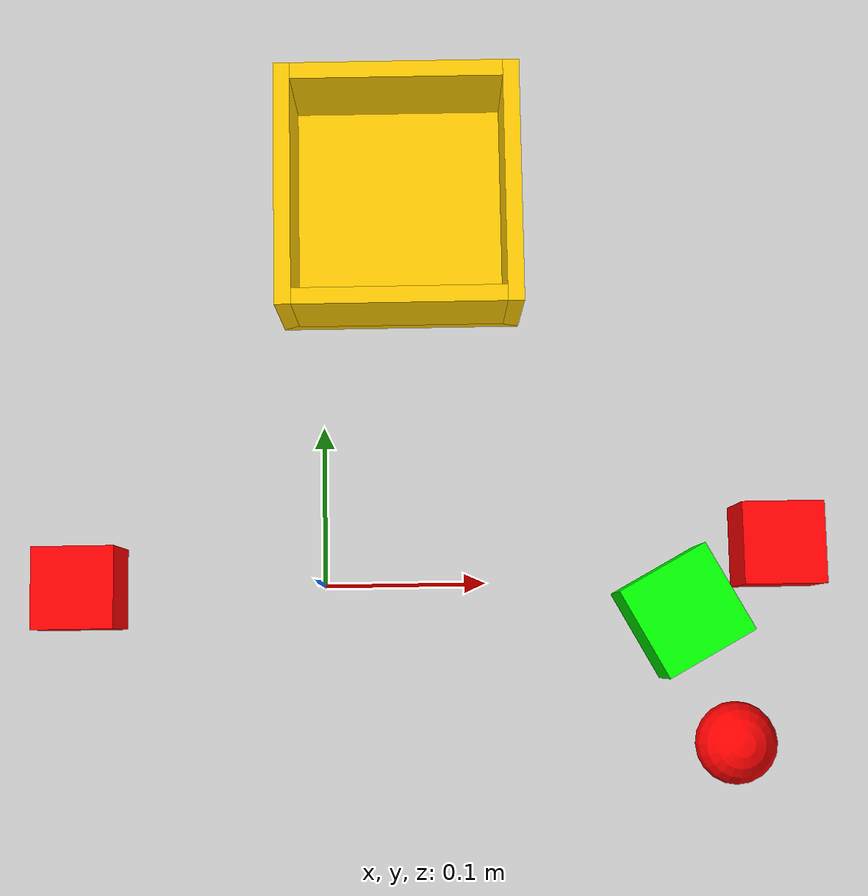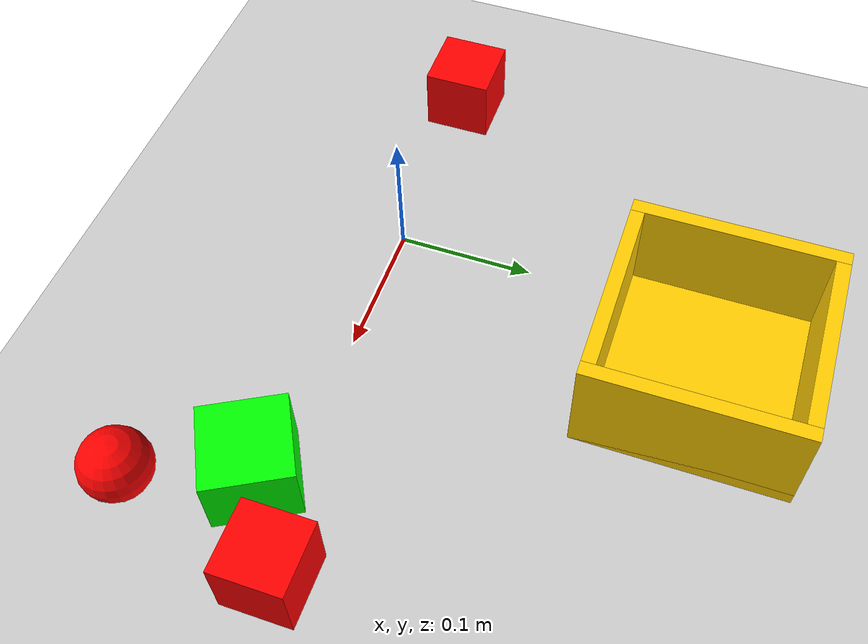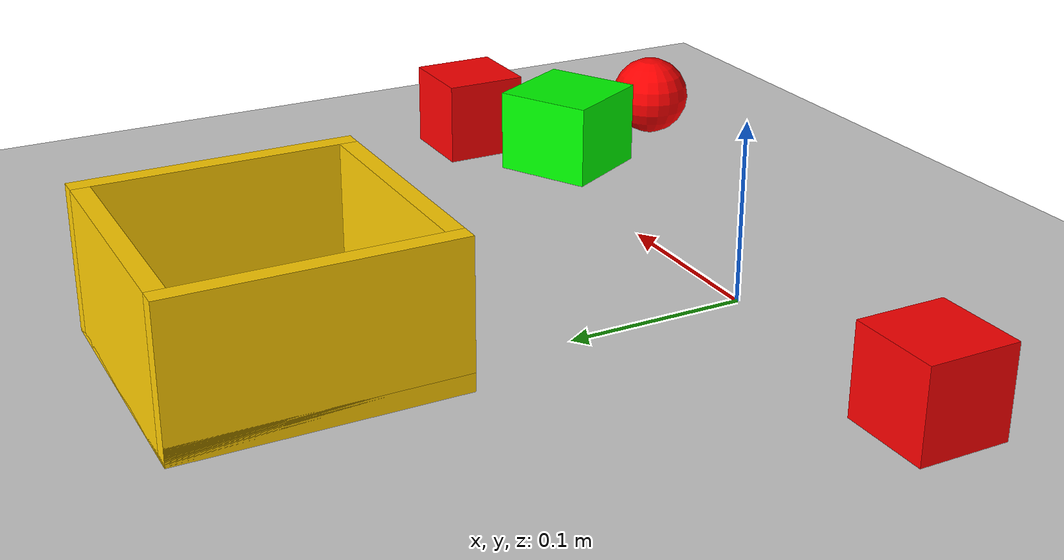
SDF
<?xml version="1.0" ?>
<sdf version="1.8">
  <world name="task_world">
    <physics name="1ms" type="ignored">
      <max_step_size>0.001</max_step_size>
      <real_time_factor>1.0</real_time_factor>
    </physics>
    <plugin filename="gz-sim-sensors-system" name="gz::sim::systems::Sensors">
      <render_engine>ogre2</render_engine>
    </plugin>
    <plugin filename="gz-sim-physics-system" name="gz::sim::systems::Physics"/>
    <plugin filename="gz-sim-user-commands-system" name="gz::sim::systems::UserCommands"/>
    <plugin filename="gz-sim-scene-broadcaster-system" name="gz::sim::systems::SceneBroadcaster"/>

    <light type="directional" name="sun">
      <cast_shadows>true</cast_shadows>
      <pose>0 0 10 0 0 0</pose>
      <diffuse>0.8 0.8 0.8 1</diffuse>
      <specular>0.2 0.2 0.2 1</specular>
      <direction>-0.5 0.1 -0.9</direction>
    </light>

    <model name="ground_plane">
      <static>true</static>
      <link name="link">
        <collision name="collision"><geometry><plane><normal>0 0 1</normal></plane></geometry></collision>
        <visual name="visual"><geometry><plane><normal>0 0 1</normal></plane></geometry><material><ambient>0.8 0.8 0.8 1</ambient></material></visual>
      </link>
    </model>

    <model name="target_red_cube">
     <pose>0.28 0.02 0.025 0 0 0</pose>
      <link name="link">
        <collision name="c1">
          <geometry><box><size>0.05 0.05 0.05</size></box></geometry>
          <surface>
            <friction>
              <ode>
                <mu>1.0</mu>      <mu2>1.0</mu2>
              </ode>
            </friction>
            <contact>
              <ode>
                <kp>1000000.0</kp>
                <kd>1.0</kd>
                <min_depth>0.002</min_depth> <max_vel>0.0</max_vel>       </ode>
            </contact>
          </surface>
        </collision>
        <visual name="v1">
          <geometry><box><size>0.05 0.05 0.05</size></box></geometry>
          <material><ambient>1 0 0 1</ambient><diffuse>1 0 0 1</diffuse></material>
        </visual>
      </link>
    </model>

    <model name="obstacle_green_cube">
      <pose>0.22 -0.02 0.025 0 0 0.5</pose>
      <link name="link">
        <collision name="c1"><geometry><box><size>0.06 0.06 0.05</size></box></geometry></collision>
        <visual name="v1"><geometry><box><size>0.06 0.06 0.05</size></box></geometry><material><ambient>0 1 0 1</ambient><diffuse>0 1 0 1</diffuse></material></visual>
      </link>
    </model>

    <model name="fake_red_sphere">
      <pose>0.25 -0.1 0.025 0 0 0</pose>
      <link name="link">
        <collision name="c1"><geometry><sphere><radius>0.025</radius></sphere></geometry></collision>
        <visual name="v1"><geometry><sphere><radius>0.025</radius></sphere></geometry><material><ambient>1 0 0 1</ambient><diffuse>1 0 0 1</diffuse></material></visual>
      </link>
    </model>

    <model name="warehouse_bin">
      <static>true</static>
      <pose>0.05 0.24 0.0 0 0 0</pose>
      <link name="link">
        <collision name="bottom"><pose>0 0 0.005 0 0 0</pose><geometry><box><size>0.15 0.15 0.01</size></box></geometry></collision>
        <visual name="bottom_vis"><pose>0 0 0.005 0 0 0</pose><geometry><box><size>0.15 0.15 0.01</size></box></geometry>
          <material><ambient>1.0 0.8 0.0 1</ambient><diffuse>1.0 0.8 0.0 1</diffuse></material>
        </visual>

        <collision name="w1"><pose>0.07 0 0.04 0 0 0</pose><geometry><box><size>0.01 0.15 0.08</size></box></geometry></collision>
        <visual name="w1_vis"><pose>0.07 0 0.04 0 0 0</pose><geometry><box><size>0.01 0.15 0.08</size></box></geometry>
          <material><ambient>1.0 0.8 0.0 1</ambient><diffuse>1.0 0.8 0.0 1</diffuse></material>
        </visual>

        <collision name="w2"><pose>-0.07 0 0.04 0 0 0</pose><geometry><box><size>0.01 0.15 0.08</size></box></geometry></collision>
        <visual name="w2_vis"><pose>-0.07 0 0.04 0 0 0</pose><geometry><box><size>0.01 0.15 0.08</size></box></geometry>
          <material><ambient>1.0 0.8 0.0 1</ambient><diffuse>1.0 0.8 0.0 1</diffuse></material>
        </visual>

        <collision name="w3"><pose>0 0.07 0.04 0 0 0</pose><geometry><box><size>0.13 0.01 0.08</size></box></geometry></collision>
        <visual name="w3_vis"><pose>0 0.07 0.04 0 0 0</pose><geometry><box><size>0.13 0.01 0.08</size></box></geometry>
          <material><ambient>1.0 0.8 0.0 1</ambient><diffuse>1.0 0.8 0.0 1</diffuse></material>
        </visual>

        <collision name="w4"><pose>0 -0.07 0.04 0 0 0</pose><geometry><box><size>0.13 0.01 0.08</size></box></geometry></collision>
        <visual name="w4_vis"><pose>0 -0.07 0.04 0 0 0</pose><geometry><box><size>0.13 0.01 0.08</size></box></geometry>
          <material><ambient>1.0 0.8 0.0 1</ambient><diffuse>1.0 0.8 0.0 1</diffuse></material>
        </visual>
      </link>
    </model>

    <model name="cube_behind">
      <pose>-0.15 0.0 0.025 0 0 0</pose> <link name="link">
        <inertial>
          <mass>0.05</mass> <inertia>
            <ixx>2e-05</ixx>
            <iyy>2e-05</iyy>
            <izz>2e-05</izz>
          </inertia>
        </inertial>
        <collision name="collision">
          <geometry>
            <box><size>0.05 0.05 0.05</size></box> </geometry>
          <surface>
            <friction>
              <ode>
                <mu>1.0</mu>
                <mu2>1.0</mu2>
              </ode>
            </friction>
            <contact>
              <ode>
                <kp>1000000.0</kp>
                <kd>1.0</kd>
                <min_depth>0.002</min_depth>
                <max_vel>0.0</max_vel>
              </ode>
            </contact>
          </surface>
        </collision>
        <visual name="visual">
          <geometry>
            <box><size>0.05 0.05 0.05</size></box>
          </geometry>
          <material>
            <ambient>1 0 0 1</ambient> <diffuse>1 0 0 1</diffuse>
          </material>
        </visual>
      </link>
    </model>
  </world>
</sdf>
